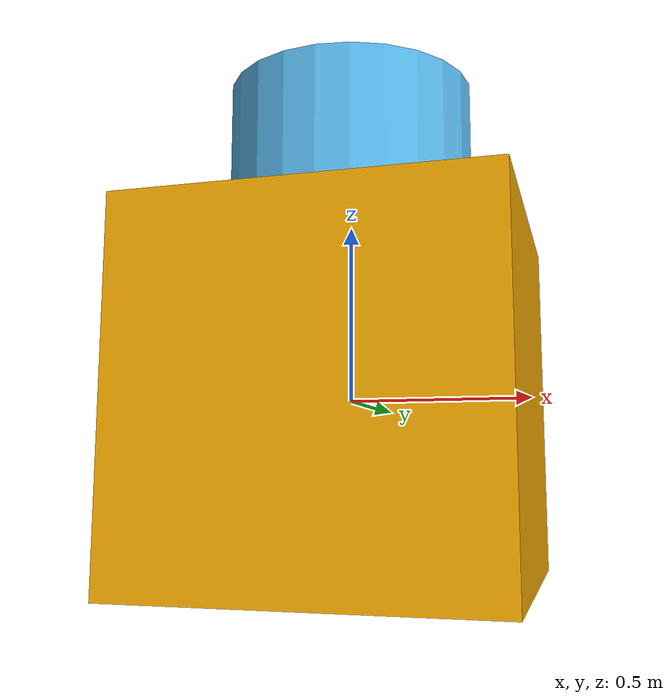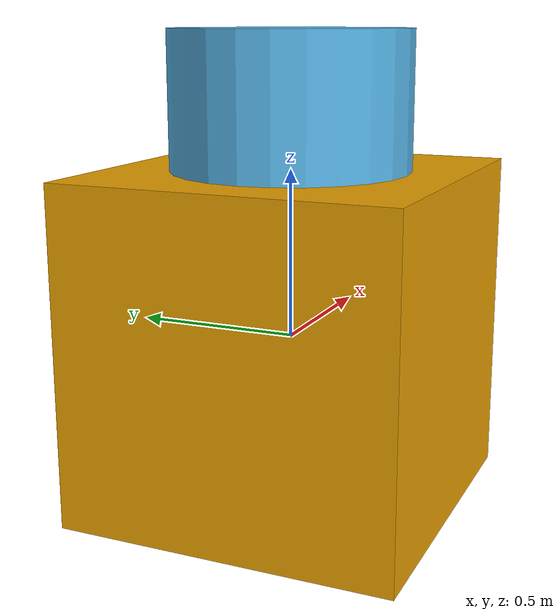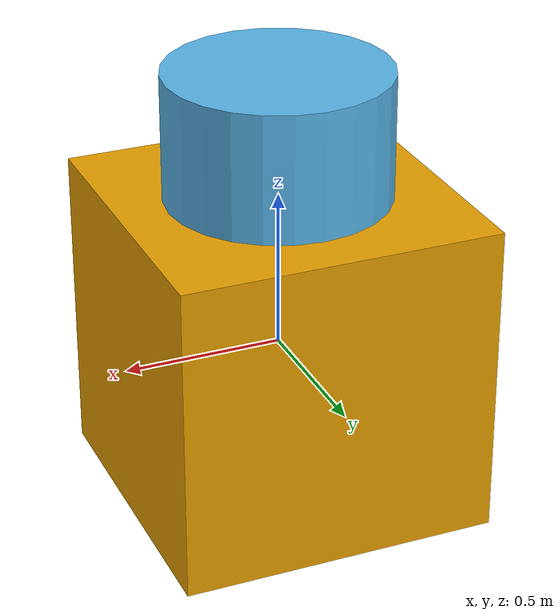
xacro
<?xml version="1.0" ?>
<!-- |    This document was autogenerated by xacro from /home/guilherme/catkin_ws/src/manipulator/urdf/manipulator.xacro | -->
<!-- |    EDITING THIS FILE BY HAND IS NOT RECOMMENDED                                 | -->
<robot name="manipulator" xmlns:xacro="http://www.ros.org/wiki/xacro">
    <link name="base_link">
        <visual>
            <origin rpy="0 0 0" xyz="0 0 0" />
            <geometry>
                <box size="1 1 1" />
            </geometry>
        </visual>
    </link>
    <joint name="base_link__link_01" type="revolute">
        <axis xyz="0 0 1" />
        <limit effort="1000.0" lower="-3.14" upper="3.14" velocity="0.5" />
        <origin rpy="0 0 0" xyz="0 0 0.5" />
        <parent link="base_link" />
        <child link="link_01" />
    </joint>
    <link name="link_01">
        <visual>
            <origin rpy="0 0 0" xyz="0 0 0.2" />
            <geometry>
                <cylinder length="0.4" radius="0.35" />
            </geometry>
        </visual>
    </link>

<transmission name="trans_base_link__link_01">
        <type>transmission_interface/SimpleTransmission</type>
        <joint name="base_link__link_01">
            <hardwareInterface>hardware_interface/EffortJointInterface</hardwareInterface>
        </joint>
        <actuator name="base_link__link_01_motor">
            <hardwareInterface>hardware_interface/EffortJointInterface</hardwareInterface>
            <mechanicalReduction>1</mechanicalReduction>
        </actuator>
    </transmission>
    <gazebo>
        <plugin name="gazebo_ros_control" filename="libgazebo_ros_control.so">
            <robotNamespace>/</robotNamespace>
        </plugin>
    </gazebo>
</robot>
